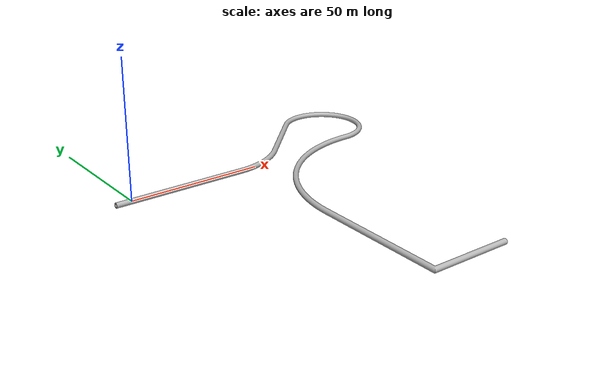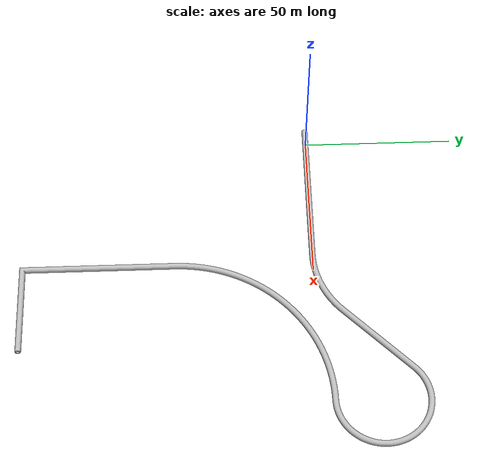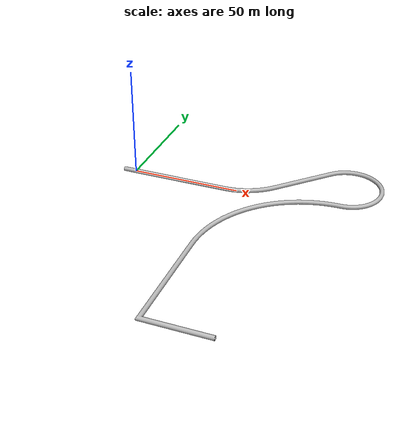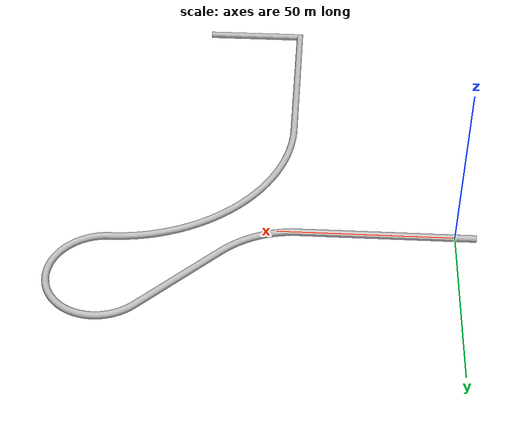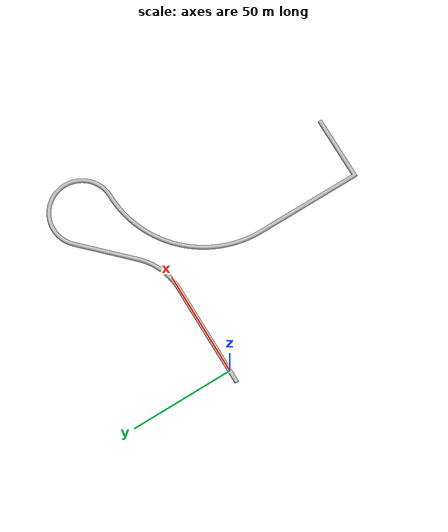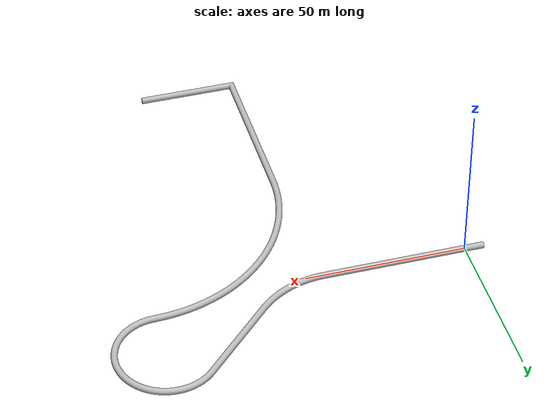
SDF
<?xml version="1.0"?>
<sdf version="1.5">
  <world name="default">
    <include>
      <uri>model://sun</uri>
    </include>
    <include>
      <uri>model://sewage_pipe_1200mm</uri>
      <static>true</static>
      <pose>-6 0 0 0 0 0</pose>
    </include>

  </world>
</sdf>

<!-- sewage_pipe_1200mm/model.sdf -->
<sdf version="1.6">
    <model name="sewage_pipe_1200mm">
      <pose>0 0 0 0 0 0</pose>
      <static>true</static>
      <link name="sewage_pipe_link">
        <collision name="collision_pipe">
          <geometry>
            <mesh>
                <uri>model://sewage_pipe_1200mm/meshes/sewage_pipe_1200mm.stl</uri>
            </mesh>
          </geometry>
          <surface>
            <friction>
              <ode>
                <mu>100</mu>
                <mu2>50</mu2>
              </ode>
            </friction>
          </surface>
        </collision>
        <visual name="visual_pipe">
          <geometry>
            <mesh>
                <uri>model://sewage_pipe_1200mm/meshes/sewage_pipe_1200mm.dae</uri>
            </mesh>
          </geometry>
          <material>
          <script>
            <uri>model://sewage_pipe_1200mm/materials/scripts</uri>
            <uri>model://sewage_pipe_1200mm/materials/textures</uri>
            <name>pipe/concrete</name>
          </script>
        </material>
        </visual>
      </link>
    </model>
</sdf>
